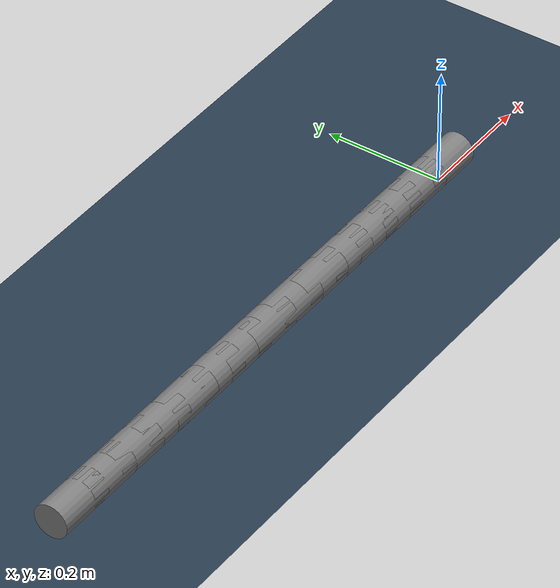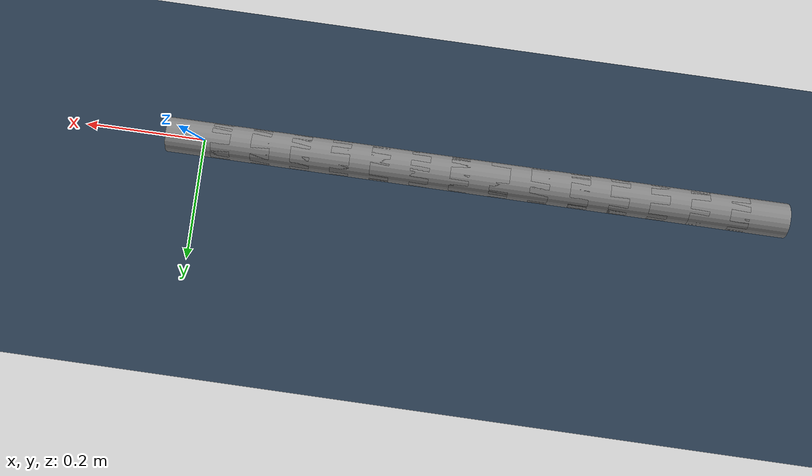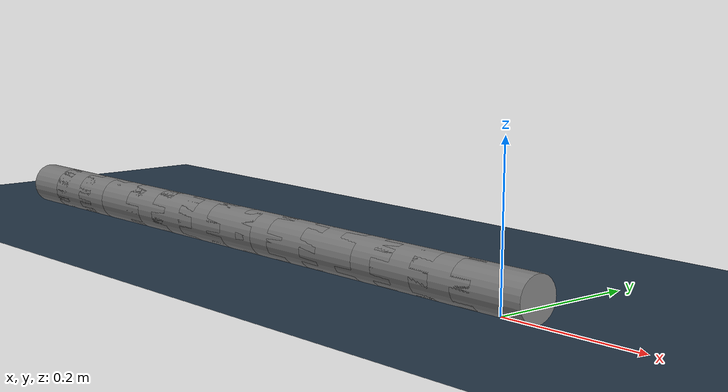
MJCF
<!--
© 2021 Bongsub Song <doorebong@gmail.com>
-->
<!-- All right reserved -->
 <!-- Description : BRM snake robot Mujoco simulation xml -->

<mujoco model="snake_kiro">

    <compiler inertiafromgeom="true" angle="degree" convexhull="false"/>

    <option timestep="0.01" iterations="50" tolerance="1e-10" solver="Newton" jacobian="dense" cone="pyramidal"/>

     <size nconmax="500" njmax="2000" nstack="10000"/>

    <visual>
        <map force="0.1" zfar="30"/>
        <rgba haze="0.15 0.25 0.35 1"/>
        <quality shadowsize="2048"/>
        <global offwidth="800" offheight="800"/>
    </visual>

    <asset>
        <texture type="skybox" builtin="gradient" rgb1="0.3 0.5 0.7" rgb2="0 0 0" width="512" height="512"/>

        <texture name="texplane" type="2d" builtin="checker" rgb1=".2 .3 .4" rgb2=".1 0.15 0.2" width="512" height="512" mark="cross" markrgb=".8 .8 .8"/>

        <texture name="texgeom" type="cube" builtin="flat" mark="cross" width="127" height="1278"
            rgb1="0.8 0.6 0.4" rgb2="0.8 0.6 0.4" markrgb="1 1 1" random="0.01"/>

        <material name="matplane" reflectance="0.3" texture="texplane" texrepeat="1 1" texuniform="true"/>

        <material name="matgeom" texture="texgeom" texuniform="true" rgba="0.8 0.6 .4 1"/>

        <!-- Pipe Meshes -->
        <mesh name="pipe100" file="./asset/Pipe-100mm-3T_low.stl"/>
    </asset>

    <worldbody>

        <geom name="floor" pos="0 0 0" size="0 0 .25" type="plane" material="matplane" condim="3" />

        <light directional="false" diffuse=".2 .2 .2" specular="0 0 0" pos="0 0 5" dir="0 0 -1" castshadow="false"/>

    <!-- Snake -->
        <body name="head" pos="0 0 0.029">
            <freejoint name="root"/>
            <!-- 질량 정보 추후 기입하기! 바로 아랫줄 -->
            <geom size="0.0288 0.05325" euler="0 -90 0" type="cylinder" friction="1 0.005 0.0001" /> <!-- default friction = "1 0.005 0.0001" -->
            <inertial pos="0 0 0" mass="0.2" diaginertia="0.0000194 0.0000174 0.0000115" />
            <body name="body1" pos="-0.0705 0 0">
                <!--Joint 태그는 하위 Body 태그와 같은 깊이를 갖고, 상위 링크의 중점에서 어떻게 이동할지 작성해야함. 왜냐? Body의 Pos가 따로 지정되지 않았기 떄문-->
                <joint name="joint1" type="hinge" pos="0.03575 0 0" axis="0 1 0" limited="true" range="-90 90" damping="0.6" stiffness="0" armature="0.05" />
                <geom size="0.0288 0.04875" euler="0 -90 0" type="cylinder" friction="1 0.005 0.0001" />
                <inertial pos="0 0 0" mass="0.2" diaginertia="0.0000194 0.0000174 0.0000115" />
                <body name="body2" pos="-0.066 0 0">
                    <joint name="joint2" type="hinge" pos="0.03575 0 0" axis="0 0 1" limited="true" range="-90 90" damping="0.6" stiffness="0" armature="0.05" />
                    <geom size="0.0288 0.04875" euler="0 -90 0" type="cylinder" friction="1 0.005 0.0001" />
                    <inertial pos="0 0 0" mass="0.2" diaginertia="0.0000194 0.0000174 0.0000115" />
                    <body name="body3" pos="-0.066 0 0">
                        <joint name="joint3" type="hinge" pos="0.03575 0 0" axis="0 1 0" limited="true" range="-90 90" damping="0.6" stiffness="0" armature="0.05" />
                        <geom size="0.0288 0.04875" euler="0 -90 0" type="cylinder" friction="1 0.005 0.0001" />
                        <inertial pos="0 0 0" mass="0.2" diaginertia="0.0000194 0.0000174 0.0000115" />
                        <body name="body4" pos="-0.066 0 0">
                            <joint name="joint4" type="hinge" pos="0.03575 0 0" axis="0 0 1" limited="true" range="-90 90" damping="0.6" stiffness="0" armature="0.05" />
                            <geom size="0.0288 0.04875" euler="0 -90 0" type="cylinder" friction="1 0.005 0.0001" />
                            <inertial pos="0 0 0" mass="0.2" diaginertia="0.0000194 0.0000174 0.0000115" />
                            <body name="body5" pos="-0.066 0 0">
                                <joint name="joint5" type="hinge" pos="0.03575 0 0" axis="0 1 0" limited="true" range="-90 90" damping="0.6" stiffness="0" armature="0.05" />
                                <geom size="0.0288 0.04875" euler="0 -90 0" type="cylinder" friction="1 0.005 0.0001" />
                                <inertial pos="0 0 0" mass="0.2" diaginertia="0.0000194 0.0000174 0.0000115" />
                                <body name="body6" pos="-0.066 0 0">
                                    <joint name="joint6" type="hinge" pos="0.03575 0 0" axis="0 0 1" limited="true" range="-90 90" damping="0.6" stiffness="0" armature="0.05" />
                                    <geom size="0.0288 0.04875" euler="0 -90 0" type="cylinder" friction="1 0.005 0.0001" />
                                    <inertial pos="0 0 0" mass="0.2" diaginertia="0.0000194 0.0000174 0.0000115" />
                                    <body name="body7" pos="-0.066 0 0">
                                        <joint name="joint7" type="hinge" pos="0.03575 0 0" axis="0 1 0" limited="true" range="-90 90" damping="0.6" stiffness="0" armature="0.05" />
                                        <geom size="0.0288 0.04875" euler="0 -90 0" type="cylinder" friction="1 0.005 0.0001" />
                                        <inertial pos="0 0 0" mass="0.2" diaginertia="0.0000194 0.0000174 0.0000115" />
                                        <body name="body8" pos="-0.066 0 0">
                                            <joint name="joint8" type="hinge" pos="0.03575 0 0" axis="0 0 1" limited="true" range="-90 90" damping="0.6" stiffness="0" armature="0.05" />
                                            <geom size="0.0288 0.04875" euler="0 -90 0" type="cylinder" friction="1 0.005 0.0001" />
                                            <inertial pos="0 0 0" mass="0.2" diaginertia="0.0000194 0.0000174 0.0000115" />
                                            <body name="body9" pos="-0.066 0 0">
                                                <joint name="joint9" type="hinge" pos="0.03575 0 0" axis="0 1 0" limited="true" range="-90 90" damping="0.6" stiffness="0" armature="0.05" />
                                                <geom size="0.0288 0.04875" euler="0 -90 0" type="cylinder" friction="1 0.005 0.0001" />
                                                <inertial pos="0 0 0" mass="0.2" diaginertia="0.0000194 0.0000174 0.0000115" />
                                                <body name="body10" pos="-0.066 0 0">
                                                    <joint name="joint10" type="hinge" pos="0.03575 0 0" axis="0 0 1" limited="true" range="-90 90" damping="0.6" stiffness="0" armature="0.05" />
                                                    <geom size="0.0288 0.04875" euler="0 -90 0" type="cylinder" friction="1 0.005 0.0001" />
                                                    <inertial pos="0 0 0" mass="0.2" diaginertia="0.0000194 0.0000174 0.0000115" />
                                                    <body name="body11" pos="-0.066 0 0">
                                                        <joint name="joint11" type="hinge" pos="0.03575 0 0" axis="0 1 0" limited="true" range="-90 90" damping="0.6" stiffness="0" armature="0.05" />
                                                        <geom size="0.0288 0.04875" euler="0 -90 0" type="cylinder" friction="1 0.005 0.0001" />
                                                        <inertial pos="0 0 0" mass="0.2" diaginertia="0.0000194 0.0000174 0.0000115" />
                                                        <body name="body12" pos="-0.066 0 0">
                                                            <joint name="joint12" type="hinge" pos="0.03575 0 0" axis="0 0 1" limited="true" range="-90 90" damping="0.6" stiffness="0" armature="0.05" />
                                                            <geom size="0.0288 0.04875" euler="0 -90 0" type="cylinder" friction="1 0.005 0.0001" />
                                                            <inertial pos="0 0 0" mass="0.2" diaginertia="0.0000194 0.0000174 0.0000115" />
                                                            <body name="body13" pos="-0.066 0 0">
                                                                <joint name="joint13" type="hinge" pos="0.03575 0 0" axis="0 1 0" limited="true" range="-90 90" damping="0.6" stiffness="0" armature="0.05" />
                                                                <geom size="0.0288 0.04875" euler="0 -90 0" type="cylinder" friction="1 0.005 0.0001" />
                                                                <inertial pos="0 0 0" mass="0.2" diaginertia="0.0000194 0.0000174 0.0000115" />
                                                                <body name="tail" pos="-0.066 0 0">
                                                                    <!-- 꼬리 링크 정보 나중에 바꾸기 -->
                                                                    <joint name="joint14" type="hinge" pos="0.03575 0 0" axis="0 0 1" limited="true" range="-90 90" damping="0.6" stiffness="0" armature="0.05" />
                                                                    <geom size="0.0288 0.04875" euler="0 -90 0" type="cylinder" friction="1 0.005 0.0001" />
                                                                    <inertial pos="0 0 0" mass="0.2" diaginertia="0.0000194 0.0000174 0.0000115" />
                                                                </body>
                                                            </body>
                                                        </body>
                                                    </body>
                                                </body>
                                            </body>
                                        </body>
                                    </body>
                                </body>
                            </body>
                        </body>
                    </body>
                </body>
            </body>
        </body>
    </worldbody>

    <actuator>
        <position name="servo_1" ctrllimited="true" ctrlrange="-1.5708 1.5708" forcelimited="true" forcerange="-3.0 3.0" gear="1" joint="joint1" kp="4"/>
        <position name="servo_2" ctrllimited="true" ctrlrange="-1.5708 1.5708" forcelimited="true" forcerange="-3.0 3.0" gear="1" joint="joint2" kp="4"/>
        <position name="servo_3" ctrllimited="true" ctrlrange="-1.5708 1.5708" forcelimited="true" forcerange="-3.0 3.0" gear="1" joint="joint3" kp="4"/>
        <position name="servo_4" ctrllimited="true" ctrlrange="-1.5708 1.5708" forcelimited="true" forcerange="-3.0 3.0" gear="1" joint="joint4" kp="4"/>
        <position name="servo_5" ctrllimited="true" ctrlrange="-1.5708 1.5708" forcelimited="true" forcerange="-3.0 3.0" gear="1" joint="joint5" kp="4"/>
        <position name="servo_6" ctrllimited="true" ctrlrange="-1.5708 1.5708" forcelimited="true" forcerange="-3.0 3.0" gear="1" joint="joint6" kp="4"/>
        <position name="servo_7" ctrllimited="true" ctrlrange="-1.5708 1.5708" forcelimited="true" forcerange="-3.0 3.0" gear="1" joint="joint7" kp="4"/>
        <position name="servo_8" ctrllimited="true" ctrlrange="-1.5708 1.5708" forcelimited="true" forcerange="-3.0 3.0" gear="1" joint="joint8" kp="4"/>
        <position name="servo_9" ctrllimited="true" ctrlrange="-1.5708 1.5708" forcelimited="true" forcerange="-3.0 3.0" gear="1" joint="joint9" kp="4"/>
        <position name="servo_10" ctrllimited="true" ctrlrange="-1.5708 1.5708" forcelimited="true" forcerange="-3.0 3.0" gear="1" joint="joint10" kp="4"/>
        <position name="servo_11" ctrllimited="true" ctrlrange="-1.5708 1.5708" forcelimited="true" forcerange="-3.0 3.0" gear="1" joint="joint11" kp="4"/>
        <position name="servo_12" ctrllimited="true" ctrlrange="-1.5708 1.5708" forcelimited="true" forcerange="-3.0 3.0" gear="1" joint="joint12" kp="4"/>
        <position name="servo_13" ctrllimited="true" ctrlrange="-1.5708 1.5708" forcelimited="true" forcerange="-3.0 3.0" gear="1" joint="joint13" kp="4"/>
        <position name="servo_14" ctrllimited="true" ctrlrange="-1.5708 1.5708" forcelimited="true" forcerange="-3.0 3.0" gear="1" joint="joint14" kp="4"/>

    </actuator>
</mujoco>
